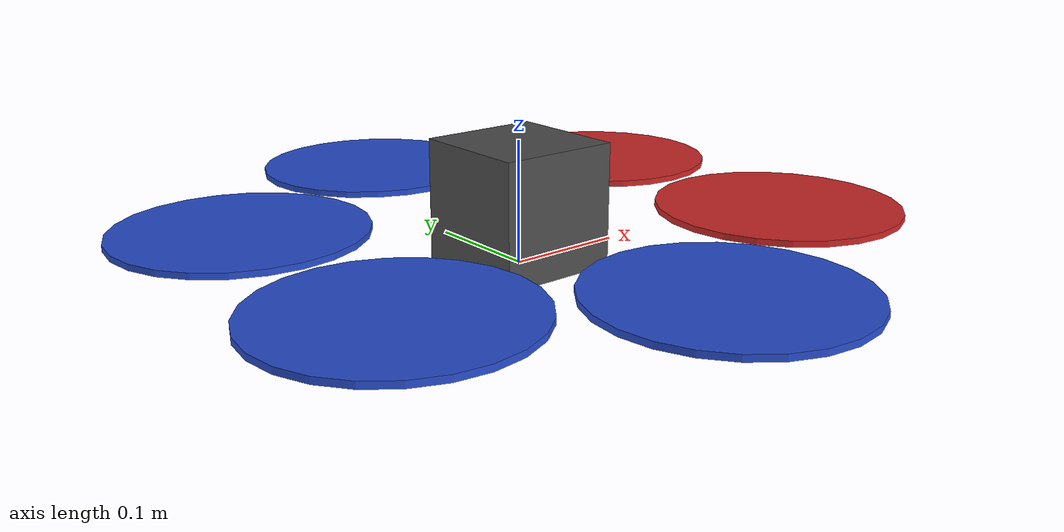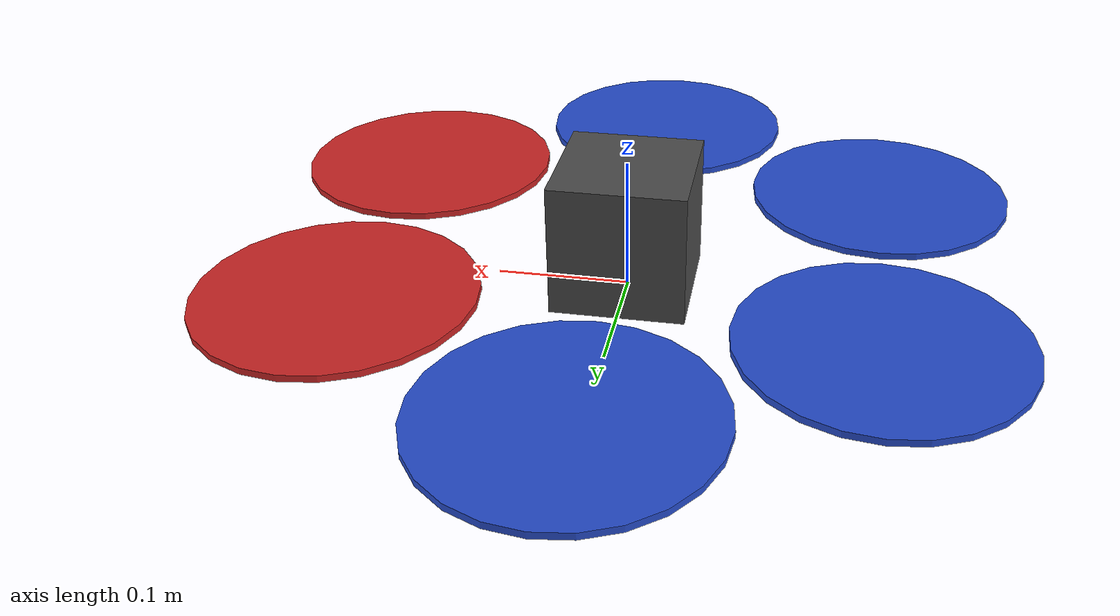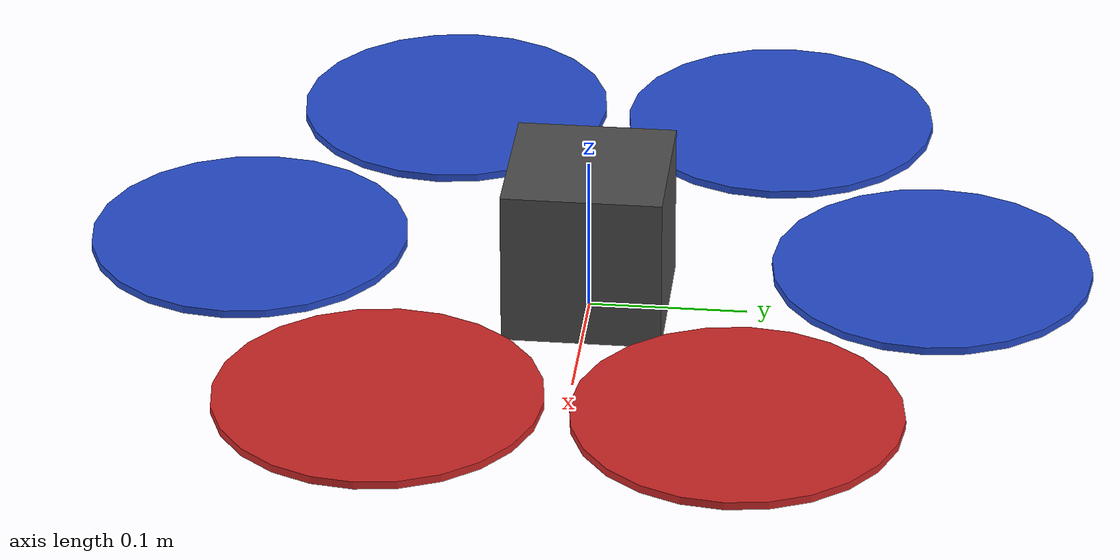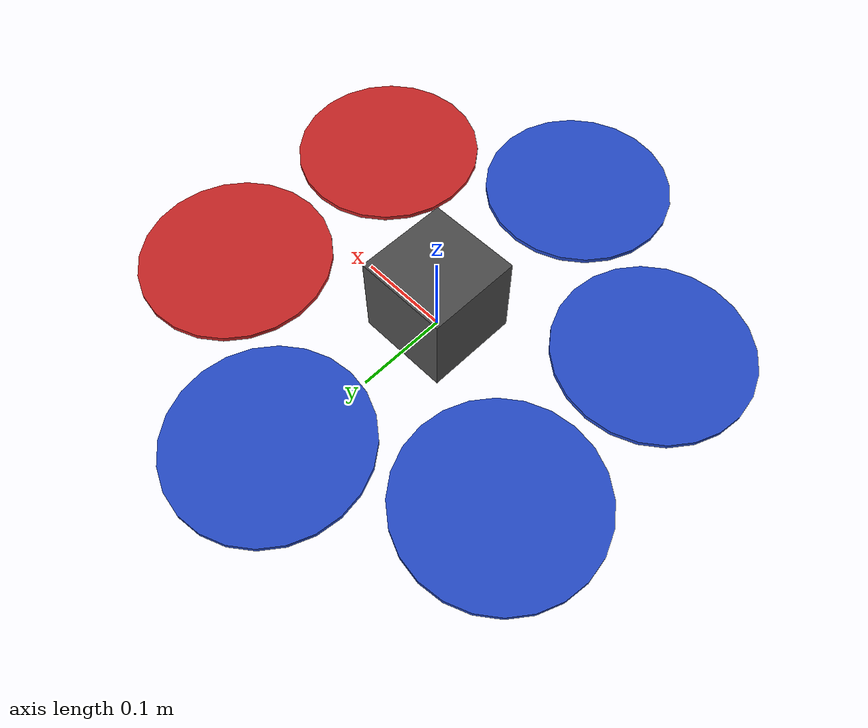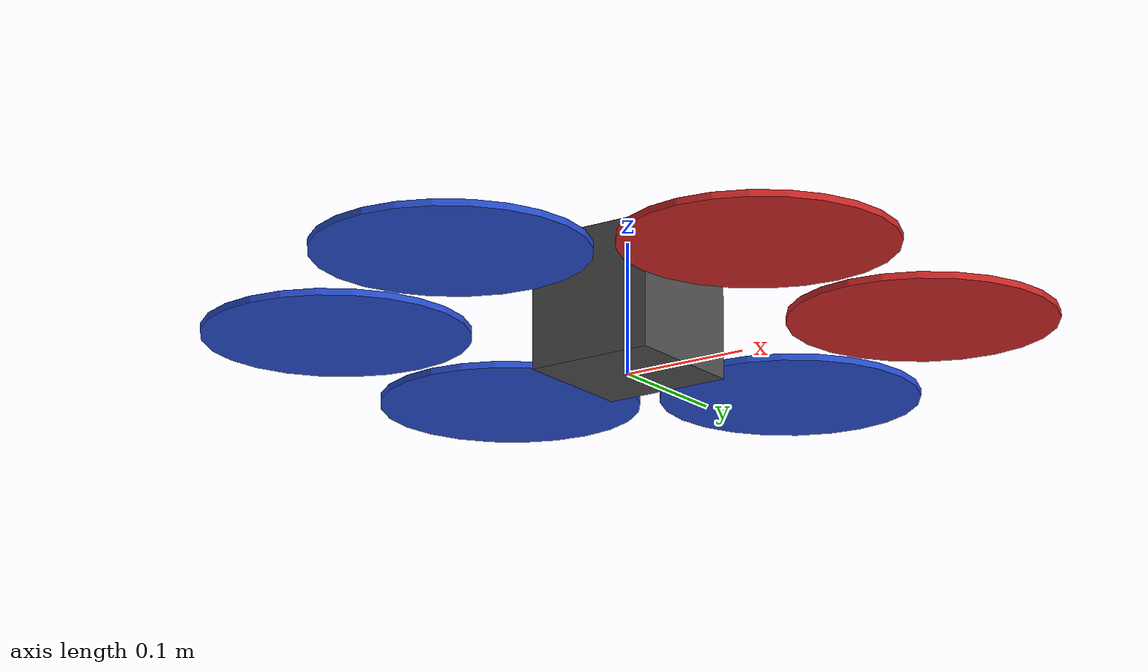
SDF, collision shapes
<sdf version='1.7'>
  <model name='firefly_gt'>
    <link name='base_link'>
      <inertial>
        <pose>0 0 0 0 -0 0</pose>
        <mass>1.5</mass>
        <inertia>
          <ixx>0.0347563</ixx>
          <ixy>0</ixy>
          <ixz>0</ixz>
          <iyy>0.0458929</iyy>
          <iyz>0</iyz>
          <izz>0.0977</izz>
        </inertia>
      </inertial>
      <collision name='base_link_inertia_collision'>
        <pose>0 0 0.05 0 -0 0</pose>
        <geometry>
          <box>
            <size>0.1 0.1 0.1</size>
          </box>
        </geometry>
        <surface>
          <contact>
            <ode>
              <min_depth>0.001</min_depth>
              <max_vel>0</max_vel>
            </ode>
          </contact>
          <friction>
            <ode/>
          </friction>
        </surface>
      </collision>
      <visual name='base_link_inertia_visual'>
        <pose>0 0 0 0 -0 0</pose>
        <geometry>
          <mesh>
            <scale>1 1 1</scale>
            <uri>model://firefly_gt/meshes/firefly_no_gear.dae</uri>
          </mesh>
        </geometry>
        <material>
          <script>
            <name>Gazebo/DarkGrey</name>
            <uri>file://media/materials/scripts/gazebo.material</uri>
          </script>
        </material>
      </visual>
      <gravity>1</gravity>
      <velocity_decay/>
    </link>
    <joint name='/imu_joint' type='revolute'>
      <pose relative_to='base_link'>0 0 0 0 -0 0</pose>
      <parent>base_link</parent>
      <child>/imu_link</child>
      <axis>
        <xyz>1 0 0</xyz>
        <limit>
          <lower>0</lower>
          <upper>0</upper>
          <effort>0</effort>
          <velocity>0</velocity>
        </limit>
        <dynamics>
          <spring_reference>0</spring_reference>
          <spring_stiffness>0</spring_stiffness>
        </dynamics>
      </axis>
    </joint>
    <link name='/imu_link'>
      <pose relative_to='/imu_joint'>0 0 0 0 -0 0</pose>
      <inertial>
        <pose>0 0 0 0 -0 0</pose>
        <mass>0.015</mass>
        <inertia>
          <ixx>1e-05</ixx>
          <ixy>0</ixy>
          <ixz>0</ixz>
          <iyy>1e-05</iyy>
          <iyz>0</iyz>
          <izz>1e-05</izz>
        </inertia>
      </inertial>
    </link>
    <joint name='rotor_0_joint' type='revolute'>
      <pose relative_to='base_link'>0 -0.215 0.037 0 -0 0</pose>
      <parent>base_link</parent>
      <child>rotor_0</child>
      <axis>
        <xyz>0 0 1</xyz>
        <limit>
          <lower>-1e+16</lower>
          <upper>1e+16</upper>
        </limit>
        <dynamics>
          <spring_reference>0</spring_reference>
          <spring_stiffness>0</spring_stiffness>
        </dynamics>
      </axis>
    </joint>
    <link name='rotor_0'>
      <pose relative_to='rotor_0_joint'>0 0 0 0 -0 0</pose>
      <inertial>
        <pose>0 0 0 0 -0 0</pose>
        <mass>0.005</mass>
        <inertia>
          <ixx>9.75e-07</ixx>
          <ixy>0</ixy>
          <ixz>0</ixz>
          <iyy>0.000166704</iyy>
          <iyz>0</iyz>
          <izz>0.000167604</izz>
        </inertia>
      </inertial>
      <collision name='rotor_0_collision'>
        <pose>0 0 0 0 -0 0</pose>
        <geometry>
          <cylinder>
            <length>0.005</length>
            <radius>0.1</radius>
          </cylinder>
        </geometry>
        <surface>
          <contact>
            <ode/>
          </contact>
          <friction>
            <ode/>
          </friction>
        </surface>
      </collision>
      <visual name='rotor_0_visual'>
        <pose>0 0 0 0 -0 0</pose>
        <geometry>
          <mesh>
            <scale>0.8 0.8 0.8</scale>
            <uri>model://rotors_description/meshes/iris_prop_cw.dae</uri>
          </mesh>
        </geometry>
        <material>
          <script>
            <name>Gazebo/Blue</name>
            <uri>file://media/materials/scripts/gazebo.material</uri>
          </script>
        </material>
      </visual>
      <gravity>1</gravity>
      <velocity_decay/>
    </link>
    <joint name='rotor_1_joint' type='revolute'>
      <pose relative_to='base_link'>0 0.215 0.037 0 -0 0</pose>
      <parent>base_link</parent>
      <child>rotor_1</child>
      <axis>
        <xyz>0 0 1</xyz>
        <limit>
          <lower>-1e+16</lower>
          <upper>1e+16</upper>
        </limit>
        <dynamics>
          <spring_reference>0</spring_reference>
          <spring_stiffness>0</spring_stiffness>
        </dynamics>
      </axis>
    </joint>
    <link name='rotor_1'>
      <pose relative_to='rotor_1_joint'>0 0 0 0 -0 0</pose>
      <inertial>
        <pose>0 0 0 0 -0 0</pose>
        <mass>0.005</mass>
        <inertia>
          <ixx>9.75e-07</ixx>
          <ixy>0</ixy>
          <ixz>0</ixz>
          <iyy>0.000166704</iyy>
          <iyz>0</iyz>
          <izz>0.000167604</izz>
        </inertia>
      </inertial>
      <collision name='rotor_1_collision'>
        <pose>0 0 0 0 -0 0</pose>
        <geometry>
          <cylinder>
            <length>0.005</length>
            <radius>0.1</radius>
          </cylinder>
        </geometry>
        <surface>
          <contact>
            <ode/>
          </contact>
          <friction>
            <ode/>
          </friction>
        </surface>
      </collision>
      <visual name='rotor_1_visual'>
        <pose>0 0 0 0 -0 0</pose>
        <geometry>
          <mesh>
            <scale>0.8 0.8 0.8</scale>
            <uri>model://rotors_description/meshes/iris_prop_ccw.dae</uri>
          </mesh>
        </geometry>
        <material>
          <script>
            <name>Gazebo/Blue</name>
            <uri>file://media/materials/scripts/gazebo.material</uri>
          </script>
        </material>
      </visual>
      <gravity>1</gravity>
      <velocity_decay/>
    </link>
    <joint name='rotor_2_joint' type='revolute'>
      <pose relative_to='base_link'>0.186195 0.1075 0.037 0 -0 0</pose>
      <parent>base_link</parent>
      <child>rotor_2</child>
      <axis>
        <xyz>0 0 1</xyz>
        <limit>
          <lower>-1e+16</lower>
          <upper>1e+16</upper>
        </limit>
        <dynamics>
          <spring_reference>0</spring_reference>
          <spring_stiffness>0</spring_stiffness>
        </dynamics>
      </axis>
    </joint>
    <link name='rotor_2'>
      <pose relative_to='rotor_2_joint'>0 0 0 0 -0 0</pose>
      <inertial>
        <pose>0 0 0 0 -0 0</pose>
        <mass>0.005</mass>
        <inertia>
          <ixx>9.75e-07</ixx>
          <ixy>0</ixy>
          <ixz>0</ixz>
          <iyy>0.000166704</iyy>
          <iyz>0</iyz>
          <izz>0.000167604</izz>
        </inertia>
      </inertial>
      <collision name='rotor_2_collision'>
        <pose>0 0 0 0 -0 0</pose>
        <geometry>
          <cylinder>
            <length>0.005</length>
            <radius>0.1</radius>
          </cylinder>
        </geometry>
        <surface>
          <contact>
            <ode/>
          </contact>
          <friction>
            <ode/>
          </friction>
        </surface>
      </collision>
      <visual name='rotor_2_visual'>
        <pose>0 0 0 0 -0 0</pose>
        <geometry>
          <mesh>
            <scale>0.8 0.8 0.8</scale>
            <uri>model://rotors_description/meshes/iris_prop_cw.dae</uri>
          </mesh>
        </geometry>
        <material>
          <script>
            <name>Gazebo/Red</name>
            <uri>file://media/materials/scripts/gazebo.material</uri>
          </script>
        </material>
      </visual>
      <gravity>1</gravity>
      <velocity_decay/>
    </link>
    <joint name='rotor_3_joint' type='revolute'>
      <pose relative_to='base_link'>-0.186195 -0.1075 0.037 0 -0 0</pose>
      <parent>base_link</parent>
      <child>rotor_3</child>
      <axis>
        <xyz>0 0 1</xyz>
        <limit>
          <lower>-1e+16</lower>
          <upper>1e+16</upper>
        </limit>
        <dynamics>
          <spring_reference>0</spring_reference>
          <spring_stiffness>0</spring_stiffness>
        </dynamics>
      </axis>
    </joint>
    <link name='rotor_3'>
      <pose relative_to='rotor_3_joint'>0 0 0 0 -0 0</pose>
      <inertial>
        <pose>0 0 0 0 -0 0</pose>
        <mass>0.005</mass>
        <inertia>
          <ixx>9.75e-07</ixx>
          <ixy>0</ixy>
          <ixz>0</ixz>
          <iyy>0.000166704</iyy>
          <iyz>0</iyz>
          <izz>0.000167604</izz>
        </inertia>
      </inertial>
      <collision name='rotor_3_collision'>
        <pose>0 0 0 0 -0 0</pose>
        <geometry>
          <cylinder>
            <length>0.005</length>
            <radius>0.1</radius>
          </cylinder>
        </geometry>
        <surface>
          <contact>
            <ode/>
          </contact>
          <friction>
            <ode/>
          </friction>
        </surface>
      </collision>
      <visual name='rotor_3_visual'>
        <pose>0 0 0 0 -0 0</pose>
        <geometry>
          <mesh>
            <scale>0.8 0.8 0.8</scale>
            <uri>model://rotors_description/meshes/iris_prop_ccw.dae</uri>
          </mesh>
        </geometry>
        <material>
          <script>
            <name>Gazebo/Blue</name>
            <uri>file://media/materials/scripts/gazebo.material</uri>
          </script>
        </material>
      </visual>
      <gravity>1</gravity>
      <velocity_decay/>
    </link>
    <joint name='rotor_4_joint' type='revolute'>
      <pose relative_to='base_link'>0.186195 -0.1075 0.037 0 -0 0</pose>
      <parent>base_link</parent>
      <child>rotor_4</child>
      <axis>
        <xyz>0 0 1</xyz>
        <limit>
          <lower>-1e+16</lower>
          <upper>1e+16</upper>
        </limit>
        <dynamics>
          <spring_reference>0</spring_reference>
          <spring_stiffness>0</spring_stiffness>
        </dynamics>
      </axis>
    </joint>
    <link name='rotor_4'>
      <pose relative_to='rotor_4_joint'>0 0 0 0 -0 0</pose>
      <inertial>
        <pose>0 0 0 0 -0 0</pose>
        <mass>0.005</mass>
        <inertia>
          <ixx>9.75e-07</ixx>
          <ixy>0</ixy>
          <ixz>0</ixz>
          <iyy>0.000166704</iyy>
          <iyz>0</iyz>
          <izz>0.000167604</izz>
        </inertia>
      </inertial>
      <collision name='rotor_4_collision'>
        <pose>0 0 0 0 -0 0</pose>
        <geometry>
          <cylinder>
            <length>0.005</length>
            <radius>0.1</radius>
          </cylinder>
        </geometry>
        <surface>
          <contact>
            <ode/>
          </contact>
          <friction>
            <ode/>
          </friction>
        </surface>
      </collision>
      <visual name='rotor_4_visual'>
        <pose>0 0 0 0 -0 0</pose>
        <geometry>
          <mesh>
            <scale>0.8 0.8 0.8</scale>
            <uri>model://rotors_description/meshes/iris_prop_ccw.dae</uri>
          </mesh>
        </geometry>
        <material>
          <script>
            <name>Gazebo/Red</name>
            <uri>file://media/materials/scripts/gazebo.material</uri>
          </script>
        </material>
      </visual>
      <gravity>1</gravity>
      <velocity_decay/>
    </link>
    <joint name='rotor_5_joint' type='revolute'>
      <pose relative_to='base_link'>-0.186195 0.1075 0.037 0 -0 0</pose>
      <parent>base_link</parent>
      <child>rotor_5</child>
      <axis>
        <xyz>0 0 1</xyz>
        <limit>
          <lower>-1e+16</lower>
          <upper>1e+16</upper>
        </limit>
        <dynamics>
          <spring_reference>0</spring_reference>
          <spring_stiffness>0</spring_stiffness>
        </dynamics>
      </axis>
    </joint>
    <link name='rotor_5'>
      <pose relative_to='rotor_5_joint'>0 0 0 0 -0 0</pose>
      <inertial>
        <pose>0 0 0 0 -0 0</pose>
        <mass>0.005</mass>
        <inertia>
          <ixx>9.75e-07</ixx>
          <ixy>0</ixy>
          <ixz>0</ixz>
          <iyy>0.000166704</iyy>
          <iyz>0</iyz>
          <izz>0.000167604</izz>
        </inertia>
      </inertial>
      <collision name='rotor_5_collision'>
        <pose>0 0 0 0 -0 0</pose>
        <geometry>
          <cylinder>
            <length>0.005</length>
            <radius>0.1</radius>
          </cylinder>
        </geometry>
        <surface>
          <contact>
            <ode/>
          </contact>
          <friction>
            <ode/>
          </friction>
        </surface>
      </collision>
      <visual name='rotor_5_visual'>
        <pose>0 0 0 0 -0 0</pose>
        <geometry>
          <mesh>
            <scale>0.8 0.8 0.8</scale>
            <uri>model://rotors_description/meshes/iris_prop_cw.dae</uri>
          </mesh>
        </geometry>
        <material>
          <script>
            <name>Gazebo/Blue</name>
            <uri>file://media/materials/scripts/gazebo.material</uri>
          </script>
        </material>
      </visual>
      <gravity>1</gravity>
      <velocity_decay/>
    </link>
    <plugin name='rosbag' filename='libgazebo_multirotor_base_plugin.so'>
      <robotNamespace/>
      <linkName>base_link</linkName>
      <rotorVelocitySlowdownSim>10</rotorVelocitySlowdownSim>
    </plugin>
    <plugin name='right_motor_model' filename='libgazebo_motor_model.so'>
      <robotNamespace/>
      <jointName>rotor_0_joint</jointName>
      <linkName>rotor_0</linkName>
      <turningDirection>cw</turningDirection>
      <timeConstantUp>0.0125</timeConstantUp>
      <timeConstantDown>0.025</timeConstantDown>
      <maxRotVelocity>838</maxRotVelocity>
      <motorConstant>8.54858e-06</motorConstant>
      <momentConstant>0.016</momentConstant>
      <commandSubTopic>/gazebo/command/motor_speed</commandSubTopic>
      <motorNumber>0</motorNumber>
      <rotorDragCoefficient>8.06428e-05</rotorDragCoefficient>
      <rollingMomentCoefficient>1e-06</rollingMomentCoefficient>
      <motorSpeedPubTopic>/motor_speed/0</motorSpeedPubTopic>
      <rotorVelocitySlowdownSim>10</rotorVelocitySlowdownSim>
    </plugin>
    <plugin name='left_motor_model' filename='libgazebo_motor_model.so'>
      <robotNamespace/>
      <jointName>rotor_1_joint</jointName>
      <linkName>rotor_1</linkName>
      <turningDirection>ccw</turningDirection>
      <timeConstantUp>0.0125</timeConstantUp>
      <timeConstantDown>0.025</timeConstantDown>
      <maxRotVelocity>838</maxRotVelocity>
      <motorConstant>8.54858e-06</motorConstant>
      <momentConstant>0.016</momentConstant>
      <commandSubTopic>/gazebo/command/motor_speed</commandSubTopic>
      <motorNumber>1</motorNumber>
      <rotorDragCoefficient>8.06428e-05</rotorDragCoefficient>
      <rollingMomentCoefficient>1e-06</rollingMomentCoefficient>
      <motorSpeedPubTopic>/motor_speed/1</motorSpeedPubTopic>
      <rotorVelocitySlowdownSim>10</rotorVelocitySlowdownSim>
    </plugin>
    <plugin name='front_left_motor_model' filename='libgazebo_motor_model.so'>
      <robotNamespace/>
      <jointName>rotor_2_joint</jointName>
      <linkName>rotor_2</linkName>
      <turningDirection>cw</turningDirection>
      <timeConstantUp>0.0125</timeConstantUp>
      <timeConstantDown>0.025</timeConstantDown>
      <maxRotVelocity>838</maxRotVelocity>
      <motorConstant>8.54858e-06</motorConstant>
      <momentConstant>0.016</momentConstant>
      <commandSubTopic>/gazebo/command/motor_speed</commandSubTopic>
      <motorNumber>2</motorNumber>
      <rotorDragCoefficient>8.06428e-05</rotorDragCoefficient>
      <rollingMomentCoefficient>1e-06</rollingMomentCoefficient>
      <motorSpeedPubTopic>/motor_speed/2</motorSpeedPubTopic>
      <rotorVelocitySlowdownSim>10</rotorVelocitySlowdownSim>
    </plugin>
    <plugin name='back_right_motor_model' filename='libgazebo_motor_model.so'>
      <robotNamespace/>
      <jointName>rotor_3_joint</jointName>
      <linkName>rotor_3</linkName>
      <turningDirection>ccw</turningDirection>
      <timeConstantUp>0.0125</timeConstantUp>
      <timeConstantDown>0.025</timeConstantDown>
      <maxRotVelocity>838</maxRotVelocity>
      <motorConstant>8.54858e-06</motorConstant>
      <momentConstant>0.016</momentConstant>
      <commandSubTopic>/gazebo/command/motor_speed</commandSubTopic>
      <motorNumber>3</motorNumber>
      <rotorDragCoefficient>8.06428e-05</rotorDragCoefficient>
      <rollingMomentCoefficient>1e-06</rollingMomentCoefficient>
      <motorSpeedPubTopic>/motor_speed/3</motorSpeedPubTopic>
      <rotorVelocitySlowdownSim>10</rotorVelocitySlowdownSim>
    </plugin>
    <plugin name='front_right_motor_model' filename='libgazebo_motor_model.so'>
      <robotNamespace/>
      <jointName>rotor_4_joint</jointName>
      <linkName>rotor_4</linkName>
      <turningDirection>ccw</turningDirection>
      <timeConstantUp>0.0125</timeConstantUp>
      <timeConstantDown>0.025</timeConstantDown>
      <maxRotVelocity>838</maxRotVelocity>
      <motorConstant>8.54858e-06</motorConstant>
      <momentConstant>0.016</momentConstant>
      <commandSubTopic>/gazebo/command/motor_speed</commandSubTopic>
      <motorNumber>4</motorNumber>
      <rotorDragCoefficient>8.06428e-05</rotorDragCoefficient>
      <rollingMomentCoefficient>1e-06</rollingMomentCoefficient>
      <motorSpeedPubTopic>/motor_speed/4</motorSpeedPubTopic>
      <rotorVelocitySlowdownSim>10</rotorVelocitySlowdownSim>
    </plugin>
    <plugin name='back_left_motor_model' filename='libgazebo_motor_model.so'>
      <robotNamespace/>
      <jointName>rotor_5_joint</jointName>
      <linkName>rotor_5</linkName>
      <turningDirection>cw</turningDirection>
      <timeConstantUp>0.0125</timeConstantUp>
      <timeConstantDown>0.025</timeConstantDown>
      <maxRotVelocity>838</maxRotVelocity>
      <motorConstant>8.54858e-06</motorConstant>
      <momentConstant>0.016</momentConstant>
      <commandSubTopic>/gazebo/command/motor_speed</commandSubTopic>
      <motorNumber>5</motorNumber>
      <rotorDragCoefficient>8.06428e-05</rotorDragCoefficient>
      <rollingMomentCoefficient>1e-06</rollingMomentCoefficient>
      <motorSpeedPubTopic>/motor_speed/5</motorSpeedPubTopic>
      <rotorVelocitySlowdownSim>10</rotorVelocitySlowdownSim>
    </plugin>
    <model name='gps0'>
      <link name='link'>
        <pose>0 0 0 0 -0 0</pose>
        <inertial>
          <pose>0 0 0 0 -0 0</pose>
          <mass>0.01</mass>
          <inertia>
            <ixx>2.1733e-06</ixx>
            <ixy>0</ixy>
            <ixz>0</ixz>
            <iyy>2.1733e-06</iyy>
            <iyz>0</iyz>
            <izz>1.8e-07</izz>
          </inertia>
        </inertial>
        <visual name='visual'>
          <geometry>
            <cylinder>
              <radius>0.01</radius>
              <length>0.002</length>
            </cylinder>
          </geometry>
          <material>
            <script>
              <name>Gazebo/Black</name>
              <uri>__default__</uri>
            </script>
          </material>
        </visual>
        <sensor name='gps' type='gps'>
          <pose>0 0 0 0 -0 0</pose>
          <plugin name='gps_plugin' filename='libgazebo_gps_plugin.so'>
            <robotNamespace/>
            <gpsNoise>1</gpsNoise>
            <gpsXYRandomWalk>0.0</gpsXYRandomWalk>
            <gpsZRandomWalk>0.0</gpsZRandomWalk>
            <gpsXYNoiseDensity>0.00000</gpsXYNoiseDensity>
            <gpsZNoiseDensity>0.00000</gpsZNoiseDensity>
            <gpsVXYNoiseDensity>0.00</gpsVXYNoiseDensity>
            <gpsVZNoiseDensity>0.00</gpsVZNoiseDensity>
          </plugin>
        </sensor>
      </link>
    </model>
    <joint name='gps0_joint' type='fixed'>
      <parent>base_link</parent>
      <child>gps0::link</child>
    </joint>
    <plugin name='groundtruth_plugin' filename='libgazebo_groundtruth_plugin.so'>
      <robotNamespace/>
    </plugin>
    <plugin name='magnetometer_plugin' filename='libgazebo_magnetometer_plugin.so'>
      <robotNamespace/>
      <pubRate>100</pubRate>
      <noiseDensity>0.0004</noiseDensity>
      <randomWalk>6.4e-06</randomWalk>
      <biasCorrelationTime>600</biasCorrelationTime>
      <magTopic>/mag</magTopic>
    </plugin>
    <plugin name='barometer_plugin' filename='libgazebo_barometer_plugin.so'>
      <robotNamespace/>
      <pubRate>50</pubRate>
      <baroTopic>/baro</baroTopic>
      <baroDriftPaPerSec>0</baroDriftPaPerSec>
    </plugin>
    <plugin name='mavlink_interface' filename='libgazebo_mavlink_interface.so'>
      <robotNamespace/>
      <imuSubTopic>/imu</imuSubTopic>
      <magSubTopic>/mag</magSubTopic>
      <baroSubTopic>/baro</baroSubTopic>
      <mavlink_addr>INADDR_ANY</mavlink_addr>
      <mavlink_udp_port>14560</mavlink_udp_port>
      <mavlink_tcp_port>4560</mavlink_tcp_port>
      <serialEnabled>0</serialEnabled>
      <serialDevice>/dev/ttyACM0</serialDevice>
      <baudRate>921600</baudRate>
      <qgc_addr>INADDR_ANY</qgc_addr>
      <qgc_udp_port>14550</qgc_udp_port>
      <sdk_addr>INADDR_ANY</sdk_addr>
      <sdk_udp_port>14540</sdk_udp_port>
      <hil_mode>0</hil_mode>
      <hil_state_level>0</hil_state_level>
      <vehicle_is_tailsitter>0</vehicle_is_tailsitter>
      <send_vision_estimation>1</send_vision_estimation>
      <send_odometry>1</send_odometry>
      <enable_lockstep>1</enable_lockstep>
      <use_tcp>1</use_tcp>
      <motorSpeedCommandPubTopic>/gazebo/command/motor_speed</motorSpeedCommandPubTopic>
      <control_channels>
        <channel name='rotor1'>
          <input_index>0</input_index>
          <input_offset>0</input_offset>
          <input_scaling>1000</input_scaling>
          <zero_position_disarmed>0</zero_position_disarmed>
          <zero_position_armed>100</zero_position_armed>
          <joint_control_type>velocity</joint_control_type>
        </channel>
        <channel name='rotor2'>
          <input_index>1</input_index>
          <input_offset>0</input_offset>
          <input_scaling>1000</input_scaling>
          <zero_position_disarmed>0</zero_position_disarmed>
          <zero_position_armed>100</zero_position_armed>
          <joint_control_type>velocity</joint_control_type>
        </channel>
        <channel name='rotor3'>
          <input_index>2</input_index>
          <input_offset>0</input_offset>
          <input_scaling>1000</input_scaling>
          <zero_position_disarmed>0</zero_position_disarmed>
          <zero_position_armed>100</zero_position_armed>
          <joint_control_type>velocity</joint_control_type>
        </channel>
        <channel name='rotor4'>
          <input_index>3</input_index>
          <input_offset>0</input_offset>
          <input_scaling>1000</input_scaling>
          <zero_position_disarmed>0</zero_position_disarmed>
          <zero_position_armed>100</zero_position_armed>
          <joint_control_type>velocity</joint_control_type>
        </channel>
        <channel name='rotor5'>
          <input_index>4</input_index>
          <input_offset>0</input_offset>
          <input_scaling>1000</input_scaling>
          <zero_position_disarmed>0</zero_position_disarmed>
          <zero_position_armed>100</zero_position_armed>
          <joint_control_type>velocity</joint_control_type>
        </channel>
        <channel name='rotor6'>
          <input_index>5</input_index>
          <input_offset>0</input_offset>
          <input_scaling>1000</input_scaling>
          <zero_position_disarmed>0</zero_position_disarmed>
          <zero_position_armed>100</zero_position_armed>
          <joint_control_type>velocity</joint_control_type>
        </channel>
        <channel name='rotor7'>
          <input_index>6</input_index>
          <input_offset>0</input_offset>
          <input_scaling>0.524</input_scaling>
          <zero_position_disarmed>0</zero_position_disarmed>
          <zero_position_armed>0</zero_position_armed>
          <joint_control_type>position</joint_control_type>
        </channel>
        <channel name='rotor8'>
          <input_index>7</input_index>
          <input_offset>0</input_offset>
          <input_scaling>0.524</input_scaling>
          <zero_position_disarmed>0</zero_position_disarmed>
          <zero_position_armed>0</zero_position_armed>
          <joint_control_type>position</joint_control_type>
        </channel>
      </control_channels>
    </plugin>
    <static>0</static>
    <plugin name='rotors_gazebo_imu_plugin' filename='libgazebo_imu_plugin.so'>
      <robotNamespace/>
      <linkName>/imu_link</linkName>
      <imuTopic>/imu</imuTopic>
      <gyroscopeNoiseDensity>0.00018665</gyroscopeNoiseDensity>
      <gyroscopeRandomWalk>3.8785e-05</gyroscopeRandomWalk>
      <gyroscopeBiasCorrelationTime>1000.0</gyroscopeBiasCorrelationTime>
      <gyroscopeTurnOnBiasSigma>0.0087</gyroscopeTurnOnBiasSigma>
      <accelerometerNoiseDensity>0.00186</accelerometerNoiseDensity>
      <accelerometerRandomWalk>0.006</accelerometerRandomWalk>
      <accelerometerBiasCorrelationTime>300.0</accelerometerBiasCorrelationTime>
      <accelerometerTurnOnBiasSigma>0.196</accelerometerTurnOnBiasSigma>
    </plugin>
  </model>
</sdf>
